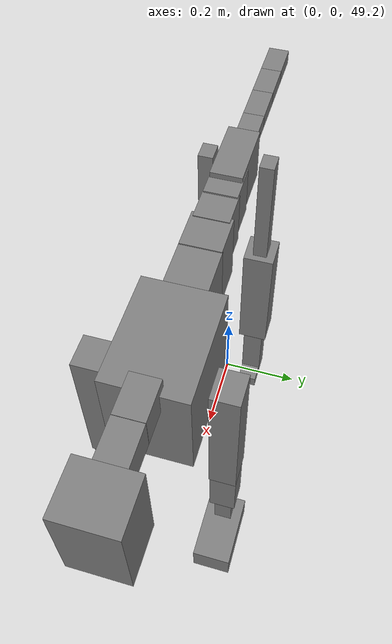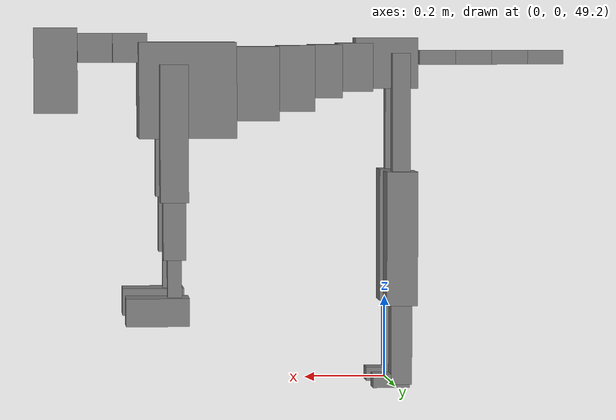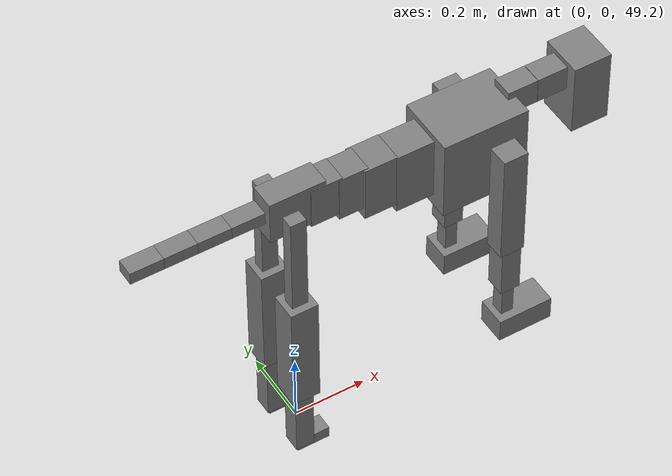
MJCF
<mujoco model="dog">

    <default>
        <joint armature="0.02" stiffness="1" damping="0.2" limited="true"/>
        <geom condim="3" friction="1 0.05 0.05" margin="0.01"/>
        <motor ctrllimited="true" ctrlrange="-1.0 1.0" forcelimited="true" gear="50"/>
    </default>

    <compiler inertiafromgeom="true" angle="radian"/>

    <option timestep="0.016" iterations="50" tolerance="1e-10" solver="Newton" jacobian="dense" cone="pyramidal"/>

    <size nconmax="20000" njmax="60000" nstack="5000000"/>
    <visual>
        <map force="0.1" zfar="30"/>
        <rgba haze="0.15 0.25 0.35 1"/>
        <quality shadowsize="2048"/>
        <global offwidth="800" offheight="800"/>
    </visual>

    <asset>
        <texture type="skybox" builtin="gradient" rgb1="0.3 0.5 0.7" rgb2="0 0 0" width="512" height="512"/>
        <texture name="texplane" type="2d" builtin="checker" rgb1=".2 .3 .4" rgb2=".1 0.15 0.2" width="512" height="512"
                 mark="cross" markrgb=".8 .8 .8"/>
        <texture name="texgeom" type="cube" builtin="flat" mark="cross" width="127" height="1278" rgb1="0.8 0.6 0.4"
                 rgb2="0.8 0.6 0.4" markrgb="1 1 1" random="0.01"/>

        <material name="matplane" reflectance="0.3" texture="texplane" texrepeat="1 1" texuniform="true"/>
        <material name="matgeom" texture="texgeom" texuniform="true" rgba="0.8 0.6 .4 1"/>
    </asset>

    <worldbody>
        <geom name="floor" pos="0 0 0" size="0 0 .25" type="plane" material="matplane" condim="3"/>

        <light directional="false" diffuse=".2 .2 .2" specular="0 0 0" pos="0 0 5" dir="0 0 -1" castshadow="false"/>
        <light mode="targetbodycom" target="torso" directional="false" diffuse=".8 .8 .8" specular="0.3 0.3 0.3"
               pos="0 0 4.0" dir="0 0 -1"/>

        <body name="root" pos="0 0 50">
            <freejoint name="root_1"/>
            <geom type="box" pos="0 0 -0.02" size="0.0774  0.0358  0.063" density="2030"/>

            <body name="spine1" pos="0.054 0 0">
                <joint name="spine1_y" axis="0 1 0" range="0 0.7" limited="true"/>
                <geom type="box" pos="0.02375 0 -0.03" size="0.04375  0.0375  0.05985" density="2030"/>

                <body name="spine2" pos="0.0612 0 0">
                    <joint name="spine2_y" axis="0 1 0" range="-0.15 0.15" limited="true"/>
                    <geom type="box" pos="0.03555  0  -0.04" size="0.04055  0.039  0.06615" density="2030"/>

                    <body name="spine3" pos="0.0730 0 0">
                        <joint name="spine3_y" axis="0 1 0" range="-0.15 0.15" limited="true"/>
                        <geom type="box" pos="0.03555  0  -0.057" size="0.04555  0.0445  0.081" density="2030"/>

                        <body name="spine4" pos="0.0780 0 0">
                            <joint name="spine4_y" axis="0 1 0" range="-0.15 0.15" limited="true"/>
                            <geom type="box" pos="0.05265  0  -0.07" size="0.05265  0.045  0.09135" density="2030"/>

                            <body name="torso" pos="0.1082 0 0">
                                <joint name="torso_y" axis="0 1 0" range="-0.15 0.15" limited="true"/>
                                <geom type="box" pos="0.11925  0  -0.085" size="0.11925  0.085  0.11745"
                                      density="2030"/>

                                <body name="neck1" pos="0.2160  0   0.0180">
                                    <joint name="neck1_y" axis="0 1 0" range="-1.2  -1" limited="true"/>
                                    <geom type="box" pos="0.0423  0  0" size="0.0423  0.03  0.036" density="2325"/>

                                    <body name="neck2" pos="0.0853  0  0">
                                        <joint name="neck2_y" axis="0 1 0" range="0.1  0" limited="true"/>
                                        <geom type="box" pos="0.0423  0  0" size="0.0423  0.03  0.036" density="2325"/>

                                        <body name="head" pos="0.0853  0  0">
                                            <joint name="head_y" axis="0 1 0" range="-0.3  -0.2" limited="true"/>
                                            <geom type="box" pos="0.0531  0  -0.055" size="0.0531  0.06  0.1044"
                                                  density="4030"/>

                                        </body>
                                    </body>
                                </body>

                                <body name="front_shoulder" pos="0.156  0   -0.0480">
                                    <joint name="front_shoulder_y" axis="0 1 0" range="-1 1.5" limited="true"/>
                                    <geom type="box" pos="0 0.13 -0.1400" size="0.0342  0.0293  0.1666" density="1158"/>
                                    <geom type="box" pos="0 -0.13 -0.1400" size="0.0342  0.0293  0.1666"
                                          density="1158"/>

                                    <body name="front_elbow" pos="0  0  -0.2799">
                                        <joint name="front_elbow_y" axis="0 1 0" range="-2 0" limited="true"/>
                                        <geom type="box" pos="0 0.13 -0.0827" size="0.0276  0.0282  0.0827"
                                              density="1081"/>
                                        <geom type="box" pos="0 -0.13 -0.0827" size="0.0276  0.0282  0.0827"
                                              density="1081"/>

                                        <body name="front_wrist" pos="0  0  -0.1653">
                                            <joint name="front_wrist_y" axis="0 1 0" range="-0.2 0" limited="true"/>
                                            <geom type="box" pos="0 0.13 -0.0532" size="0.0172  0.0191  0.0663"
                                                  density="1664"/>
                                            <geom type="box" pos="0 -0.13 -0.0532" size="0.0172  0.0191  0.0663"
                                                  density="1664"/>

                                            <body name="front_finger_end" pos="0  0  -0.1063">
                                                <joint name="front_finger_y" axis="0 1 0" range="-0.4 1"
                                                       limited="true"/>
                                                <geom type="box" pos="0.0418  0.13  -0.0190"
                                                      size="0.0766  0.0418  0.0340" density="1515"/>
                                                <geom type="box" pos="0.0418  -0.13  -0.0190"
                                                      size="0.0766  0.0418  0.0340" density="1515"/>

                                            </body>

                                        </body>
                                    </body>
                                </body>

                            </body>
                        </body>
                    </body>
                </body>
            </body>

            <body name="back_hip" pos="-0.03 0 -0.018">
                <joint name="back_hip_y" axis="0 1 0" range="-1.5 0.3" limited="true"/>
                <geom type="box" pos="0 0.07 -0.1413" size="0.0222  0.0174  0.1641" density="1154"/>
                <geom type="box" pos="0 -0.07 -0.1413" size="0.0222  0.0174  0.1641" density="1154"/>

                <body name="back_knee" pos="0  0  -0.2825">
                    <joint name="back_knee_y" axis="0 1 0" range="0 2.8" limited="true"/>
                    <geom type="box" pos="0 0.07 -0.1493" size="0.0383  0.0377  0.1648" density="1227"/>
                    <geom type="box" pos="0 -0.07 -0.1493" size="0.0383  0.0377  0.1648" density="1227"/>

                    <body name="back_ankle" pos="0  0  -0.2985">
                        <joint name="back_ankle_y" axis="0 1 0" range="-2.2 0" limited="true"/>
                        <geom type="box" pos="0 0.07 -0.0999" size="0.0258  0.0258  0.1111" density="1284"/>
                        <geom type="box" pos="0 -0.07 -0.0999" size="0.0258  0.0258  0.1111" density="1284"/>

                        <body name="back_toe_end" pos="0  0  -0.1997">
                            <joint name="back_toe_y" axis="0 1 0" range="-0.4 1" limited="true"/>
                            <geom type="box" pos="0.0248  0.07  -0.0019" size="0.0455  0.0248  0.0169" density="1515"/>
                            <geom type="box" pos="0.0248  -0.07  -0.0019" size="0.0455  0.0248  0.0169" density="1515"/>

                        </body>
                    </body>
                </body>
            </body>

            <body name="tail1" pos="-0.074 0 -0.006">
                <joint name="tail1_y" axis="0 1 0" range="-0.2 0.2" limited="true"/>
                <geom type="box" pos="-0.0536  0  0" size="0.045  0.025  0.0175" density="1587"/>

                <body name="tail2" pos="-0.09 0 0">
                    <joint name="tail2_y" axis="0 1 0" range="-0.2 0.2" limited="true"/>
                    <geom type="box" pos="-0.0536  0  0" size="0.045  0.025  0.0175" density="1587"/>

                    <body name="tail3" pos="-0.09 0 0">
                        <joint name="tail3_y" axis="0 1 0" range="-0.2 0.2" limited="true"/>
                        <geom type="box" pos="-0.0536  0  0" size="0.045  0.025  0.0175" density="1587"/>

                        <body name="tail4" pos="-0.09 0 0">
                            <joint name="tail4_y" axis="0 1 0" range="-0.2 0.2" limited="true"/>
                            <geom type="box" pos="-0.0536  0  0" size="0.045  0.025  0.0175" density="1587"/>

                        </body>
                    </body>
                </body>
            </body>
        </body>
    </worldbody>

    <actuator>
        <motor joint="spine1_y" forcerange="-150 150     "/>
        <motor joint="spine2_y" forcerange="-150 150     "/>
        <motor joint="spine3_y" forcerange="-150 150     "/>
        <motor joint="spine4_y" forcerange="-150 150     "/>
        <motor joint="torso_y" forcerange="-150 150     "/>
        <motor joint="neck1_y" forcerange="-100 100       "/>
        <motor joint="neck2_y" forcerange="-100 100       "/>
        <motor joint="head_y" forcerange="-150 150       "/>
        <motor joint="front_shoulder_y" forcerange="-102.43 192.63"/>
        <motor joint="front_elbow_y" forcerange="-138.60 166.61"/>
        <motor joint="front_wrist_y" forcerange="-57.01 95.98"/>
        <motor joint="front_finger_y" forcerange="-91.09 91.68"/>
        <motor joint="back_hip_y" forcerange="-216.46 215.94"/>
        <motor joint="back_knee_y" forcerange="-376.38 372.01"/>
        <motor joint="back_angle_y" forcerange="-171.72 141.26"/>
        <motor joint="back_toe_y" forcerange="-36.83 81.73"/>
        <motor joint="tail1_y" forcerange="-50 50     "/>
        <motor joint="tail2_y" forcerange="-50 50     "/>
        <motor joint="tail3_y" forcerange="-50 50     "/>
        <motor joint="tail4_y" forcerange="-50 50     "/>
    </actuator>
</mujoco>
